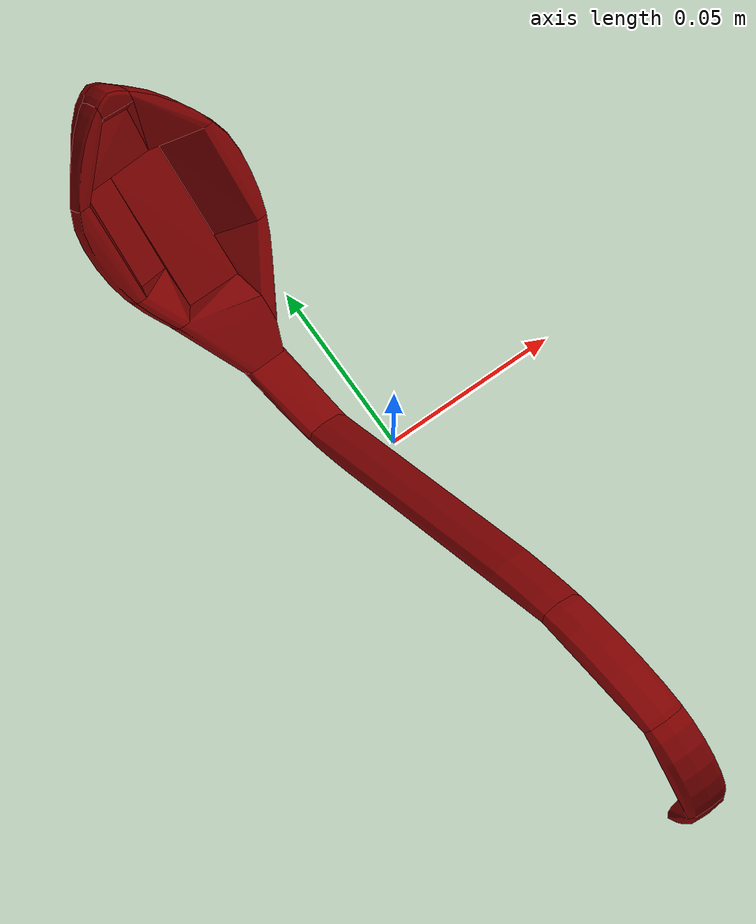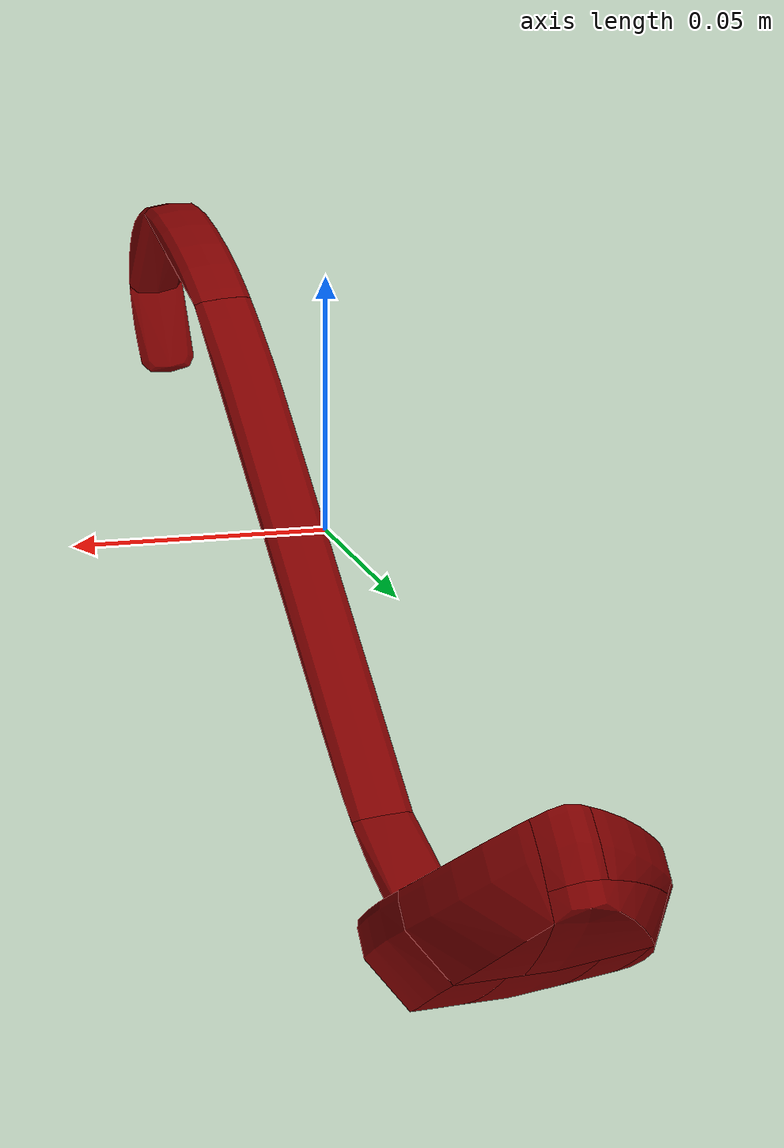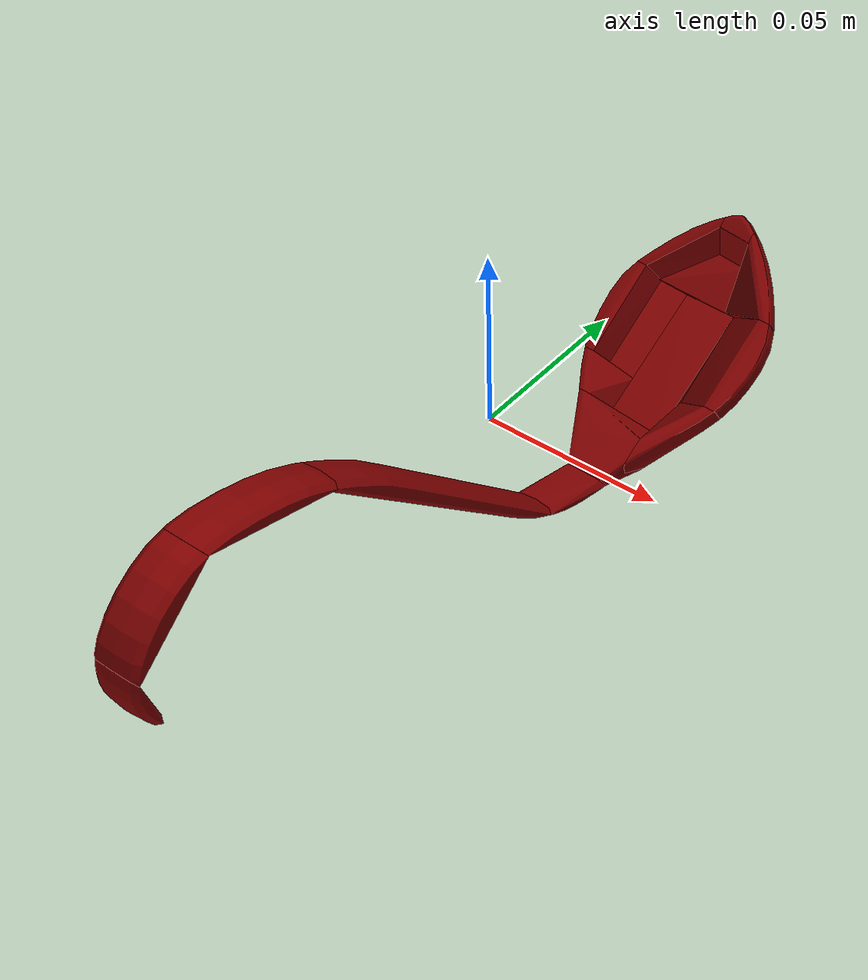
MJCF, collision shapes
<mujoco model="ladle_0">
  <asset>
    <mesh file="visual/model_normalized_0.obj" name="model_normalized_0_vis" scale="0.21000000000000002 0.21000000000000002 0.21000000000000002" refquat="0.9550930733705763 -0.29335981304387554 -0.04130411213793779 -0.005586735264235185"/>
    <texture type="2d" name="image0" file="visual/image0.png"/>
    <material name="Unwrap_Texture_Checker_Material" texture="image0" specular="0.5" shininess="0.25"/>
    <mesh file="collision/collision_mesh_collision_0.obj" name="ladle_collision_mesh_0" scale="0.21000000000000002 0.21000000000000002 0.21000000000000002" refquat="0.9550930733705763 -0.29335981304387554 -0.04130411213793779 -0.005586735264235185"/>
    <mesh file="collision/collision_mesh_collision_1.obj" name="ladle_collision_mesh_1" scale="0.21000000000000002 0.21000000000000002 0.21000000000000002" refquat="0.9550930733705763 -0.29335981304387554 -0.04130411213793779 -0.005586735264235185"/>
    <mesh file="collision/collision_mesh_collision_2.obj" name="ladle_collision_mesh_2" scale="0.21000000000000002 0.21000000000000002 0.21000000000000002" refquat="0.9550930733705763 -0.29335981304387554 -0.04130411213793779 -0.005586735264235185"/>
    <mesh file="collision/collision_mesh_collision_3.obj" name="ladle_collision_mesh_3" scale="0.21000000000000002 0.21000000000000002 0.21000000000000002" refquat="0.9550930733705763 -0.29335981304387554 -0.04130411213793779 -0.005586735264235185"/>
    <mesh file="collision/collision_mesh_collision_4.obj" name="ladle_collision_mesh_4" scale="0.21000000000000002 0.21000000000000002 0.21000000000000002" refquat="0.9550930733705763 -0.29335981304387554 -0.04130411213793779 -0.005586735264235185"/>
    <mesh file="collision/collision_mesh_collision_5.obj" name="ladle_collision_mesh_5" scale="0.21000000000000002 0.21000000000000002 0.21000000000000002" refquat="0.9550930733705763 -0.29335981304387554 -0.04130411213793779 -0.005586735264235185"/>
    <mesh file="collision/collision_mesh_collision_6.obj" name="ladle_collision_mesh_6" scale="0.21000000000000002 0.21000000000000002 0.21000000000000002" refquat="0.9550930733705763 -0.29335981304387554 -0.04130411213793779 -0.005586735264235185"/>
    <mesh file="collision/collision_mesh_collision_7.obj" name="ladle_collision_mesh_7" scale="0.21000000000000002 0.21000000000000002 0.21000000000000002" refquat="0.9550930733705763 -0.29335981304387554 -0.04130411213793779 -0.005586735264235185"/>
    <mesh file="collision/collision_mesh_collision_8.obj" name="ladle_collision_mesh_8" scale="0.21000000000000002 0.21000000000000002 0.21000000000000002" refquat="0.9550930733705763 -0.29335981304387554 -0.04130411213793779 -0.005586735264235185"/>
    <mesh file="collision/collision_mesh_collision_9.obj" name="ladle_collision_mesh_9" scale="0.21000000000000002 0.21000000000000002 0.21000000000000002" refquat="0.9550930733705763 -0.29335981304387554 -0.04130411213793779 -0.005586735264235185"/>
    <mesh file="collision/collision_mesh_collision_10.obj" name="ladle_collision_mesh_10" scale="0.21000000000000002 0.21000000000000002 0.21000000000000002" refquat="0.9550930733705763 -0.29335981304387554 -0.04130411213793779 -0.005586735264235185"/>
    <mesh file="collision/collision_mesh_collision_11.obj" name="ladle_collision_mesh_11" scale="0.21000000000000002 0.21000000000000002 0.21000000000000002" refquat="0.9550930733705763 -0.29335981304387554 -0.04130411213793779 -0.005586735264235185"/>
    <mesh file="collision/collision_mesh_collision_12.obj" name="ladle_collision_mesh_12" scale="0.21000000000000002 0.21000000000000002 0.21000000000000002" refquat="0.9550930733705763 -0.29335981304387554 -0.04130411213793779 -0.005586735264235185"/>
    <mesh file="collision/collision_mesh_collision_13.obj" name="ladle_collision_mesh_13" scale="0.21000000000000002 0.21000000000000002 0.21000000000000002" refquat="0.9550930733705763 -0.29335981304387554 -0.04130411213793779 -0.005586735264235185"/>
    <mesh file="collision/collision_mesh_collision_14.obj" name="ladle_collision_mesh_14" scale="0.21000000000000002 0.21000000000000002 0.21000000000000002" refquat="0.9550930733705763 -0.29335981304387554 -0.04130411213793779 -0.005586735264235185"/>
    <mesh file="collision/collision_mesh_collision_15.obj" name="ladle_collision_mesh_15" scale="0.21000000000000002 0.21000000000000002 0.21000000000000002" refquat="0.9550930733705763 -0.29335981304387554 -0.04130411213793779 -0.005586735264235185"/>
  </asset>
  <default>
    <default class="region">
      <geom group="1" conaffinity="0" contype="0" rgba="0 1 0 0"/>
    </default>
    <default class="collision">
      <geom group="0" rgba="0.5 0 0 0.5" density="1000.0"/>
    </default>
  </default>
  <worldbody>
    <body>
      <body name="object">
        <geom solimp="0.998 0.998 0.001" solref="0.001 1" density="100" friction="0.95 0.3 0.1" type="mesh" mesh="model_normalized_0_vis" conaffinity="0" contype="0" group="1" material="Unwrap_Texture_Checker_Material"/>
        <geom class="region" name="reg_bbox" type="box" pos="-0.006640413124285862 0.002824357330414317 -0.010582165616034213" size="0.026125349593454774 0.13562866877822022 0.05929102276508556"/>
        <geom mesh="ladle_collision_mesh_0" type="mesh" class="collision"/>
        <geom mesh="ladle_collision_mesh_1" type="mesh" class="collision"/>
        <geom mesh="ladle_collision_mesh_2" type="mesh" class="collision"/>
        <geom mesh="ladle_collision_mesh_3" type="mesh" class="collision"/>
        <geom mesh="ladle_collision_mesh_4" type="mesh" class="collision"/>
        <geom mesh="ladle_collision_mesh_5" type="mesh" class="collision"/>
        <geom mesh="ladle_collision_mesh_6" type="mesh" class="collision"/>
        <geom mesh="ladle_collision_mesh_7" type="mesh" class="collision"/>
        <geom mesh="ladle_collision_mesh_8" type="mesh" class="collision"/>
        <geom mesh="ladle_collision_mesh_9" type="mesh" class="collision"/>
        <geom mesh="ladle_collision_mesh_10" type="mesh" class="collision"/>
        <geom mesh="ladle_collision_mesh_11" type="mesh" class="collision"/>
        <geom mesh="ladle_collision_mesh_12" type="mesh" class="collision"/>
        <geom mesh="ladle_collision_mesh_13" type="mesh" class="collision"/>
        <geom mesh="ladle_collision_mesh_14" type="mesh" class="collision"/>
        <geom mesh="ladle_collision_mesh_15" type="mesh" class="collision"/>
      </body>
    </body>
  </worldbody>
</mujoco>
